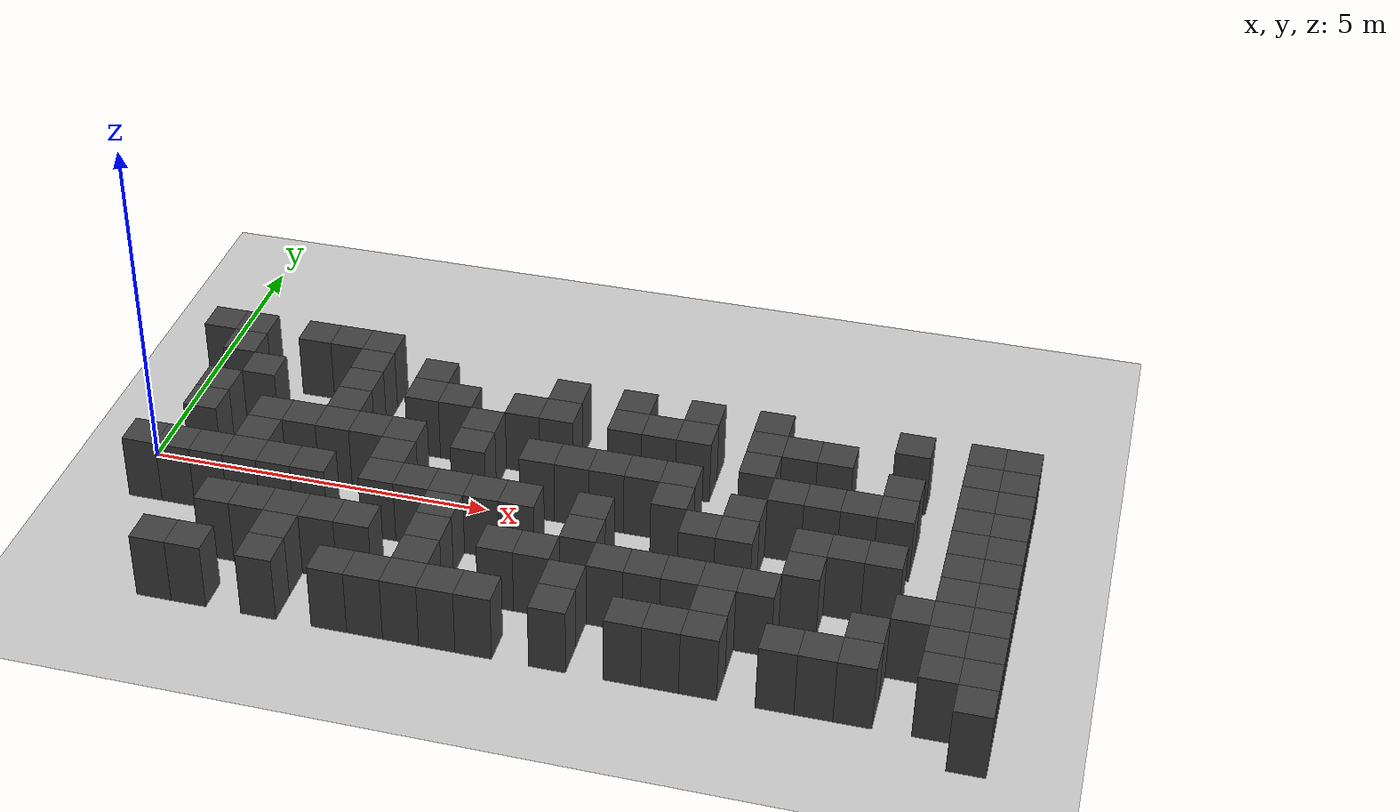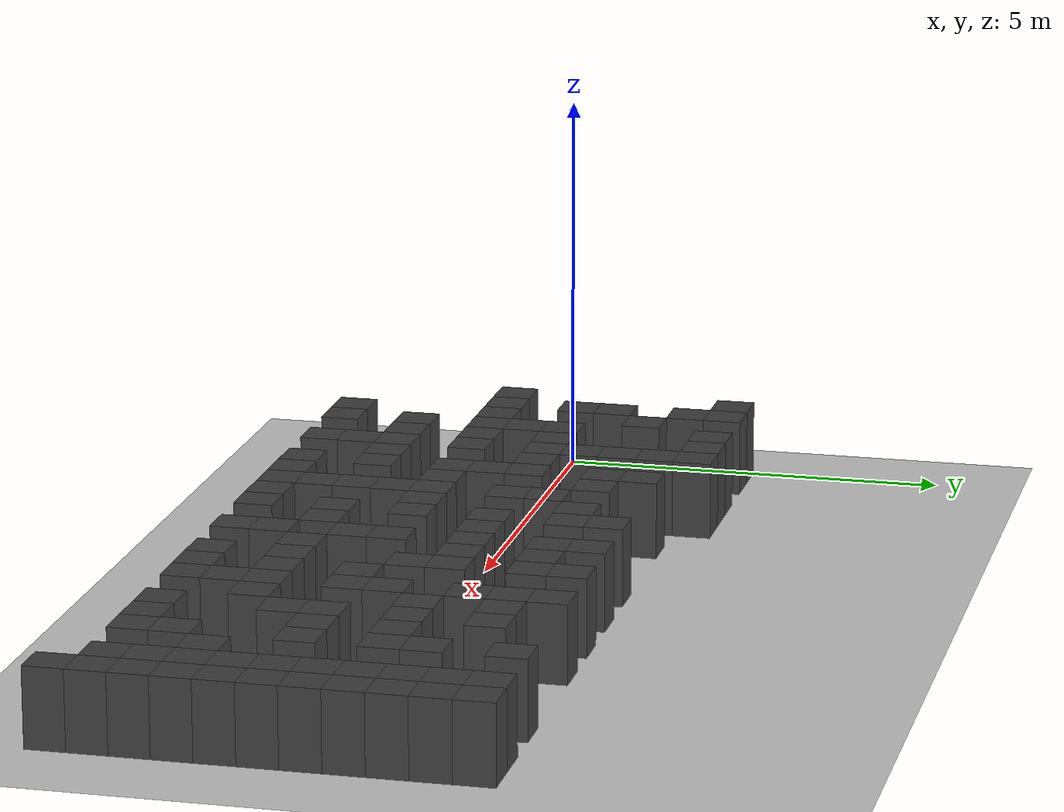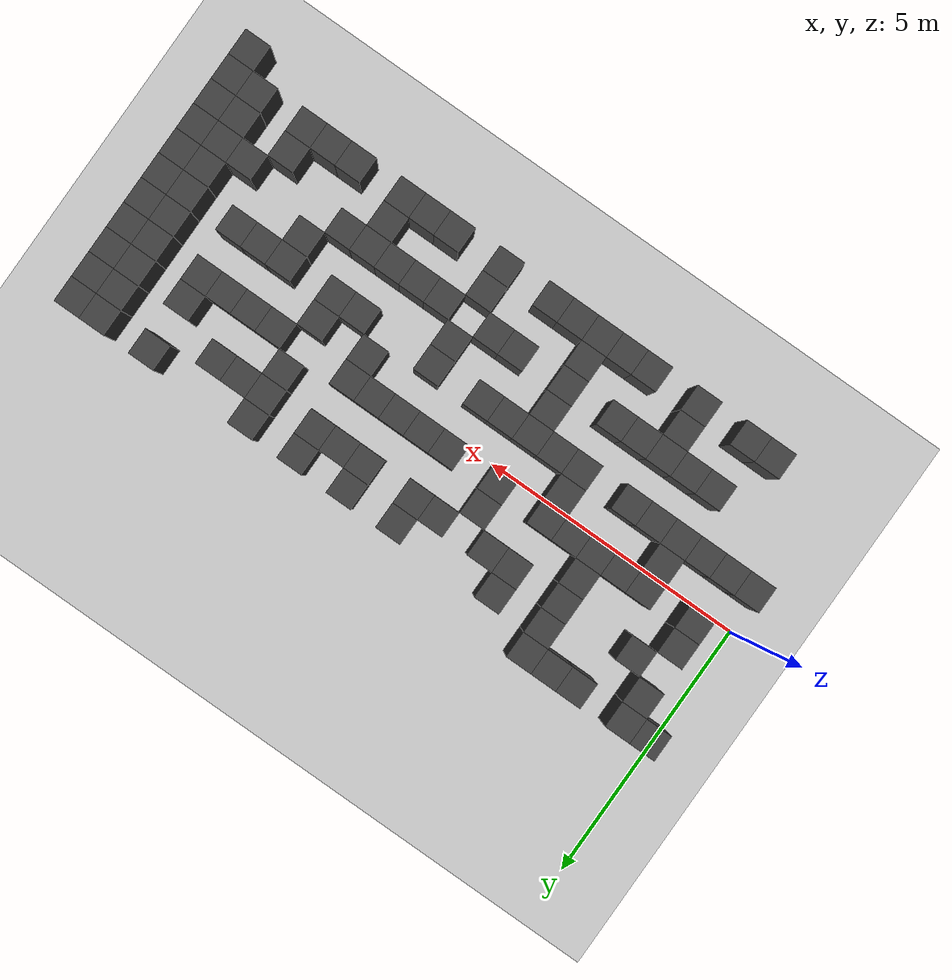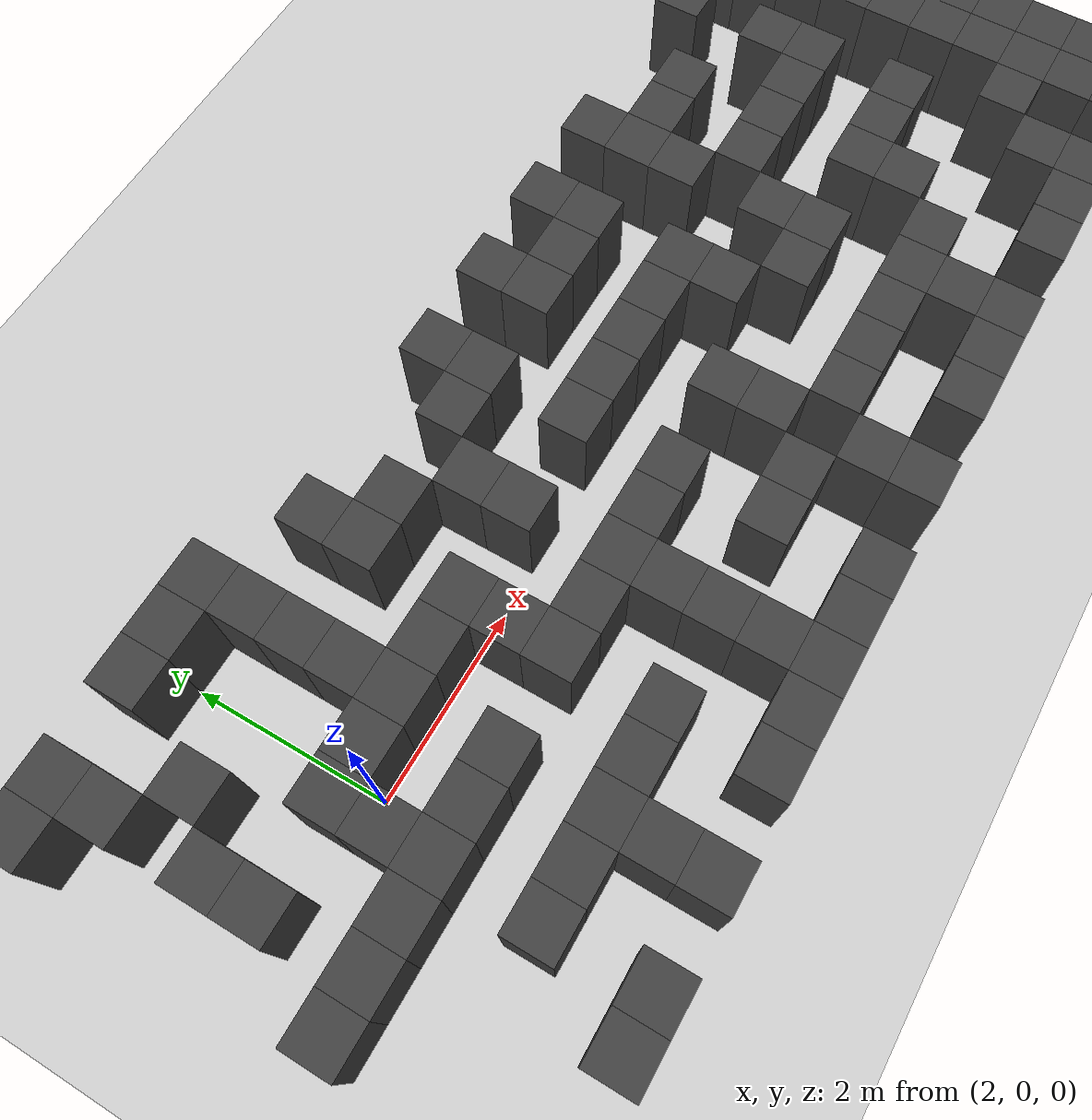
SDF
<sdf version="1.7">
 <world name="map_16783">
  <model name="ground_plane">
   <static>true</static>
   <link name="link">
    <collision name="collision">
     <geometry><plane><normal>0 0 1</normal><size>200 200</size></plane></geometry>
    </collision>
    <visual name="visual">
     <geometry><plane><normal>0 0 1</normal><size>200 200</size></plane></geometry>
     <material><ambient>0.8 0.8 0.8 1</ambient><diffuse>0.8 0.8 0.8 1</diffuse></material>
    </visual>
   </link>
  </model>
  <model name="maze_environment">
   <static>true</static>
   <link name="wall_508">
    <pose>0.250 2.250 0.500 0 0 0</pose>
    <collision name="col"><geometry><box><size>0.5 0.5 1.0</size></box></geometry></collision>
    <visual name="vis">
     <geometry><box><size>0.5 0.5 1.0</size></box></geometry>
     <material><ambient>0.15 0.15 0.15 1</ambient><diffuse>0.25 0.25 0.25 1</diffuse></material>
    </visual>
   </link>
   <link name="wall_509">
    <pose>0.750 2.250 0.500 0 0 0</pose>
    <collision name="col"><geometry><box><size>0.5 0.5 1.0</size></box></geometry></collision>
    <visual name="vis">
     <geometry><box><size>0.5 0.5 1.0</size></box></geometry>
     <material><ambient>0.15 0.15 0.15 1</ambient><diffuse>0.25 0.25 0.25 1</diffuse></material>
    </visual>
   </link>
   <link name="wall_510">
    <pose>1.750 2.250 0.500 0 0 0</pose>
    <collision name="col"><geometry><box><size>0.5 0.5 1.0</size></box></geometry></collision>
    <visual name="vis">
     <geometry><box><size>0.5 0.5 1.0</size></box></geometry>
     <material><ambient>0.15 0.15 0.15 1</ambient><diffuse>0.25 0.25 0.25 1</diffuse></material>
    </visual>
   </link>
   <link name="wall_511">
    <pose>2.250 2.250 0.500 0 0 0</pose>
    <collision name="col"><geometry><box><size>0.5 0.5 1.0</size></box></geometry></collision>
    <visual name="vis">
     <geometry><box><size>0.5 0.5 1.0</size></box></geometry>
     <material><ambient>0.15 0.15 0.15 1</ambient><diffuse>0.25 0.25 0.25 1</diffuse></material>
    </visual>
   </link>
   <link name="wall_512">
    <pose>2.750 2.250 0.500 0 0 0</pose>
    <collision name="col"><geometry><box><size>0.5 0.5 1.0</size></box></geometry></collision>
    <visual name="vis">
     <geometry><box><size>0.5 0.5 1.0</size></box></geometry>
     <material><ambient>0.15 0.15 0.15 1</ambient><diffuse>0.25 0.25 0.25 1</diffuse></material>
    </visual>
   </link>
   <link name="wall_526">
    <pose>0.750 1.750 0.500 0 0 0</pose>
    <collision name="col"><geometry><box><size>0.5 0.5 1.0</size></box></geometry></collision>
    <visual name="vis">
     <geometry><box><size>0.5 0.5 1.0</size></box></geometry>
     <material><ambient>0.15 0.15 0.15 1</ambient><diffuse>0.25 0.25 0.25 1</diffuse></material>
    </visual>
   </link>
   <link name="wall_527">
    <pose>2.750 1.750 0.500 0 0 0</pose>
    <collision name="col"><geometry><box><size>0.5 0.5 1.0</size></box></geometry></collision>
    <visual name="vis">
     <geometry><box><size>0.5 0.5 1.0</size></box></geometry>
     <material><ambient>0.15 0.15 0.15 1</ambient><diffuse>0.25 0.25 0.25 1</diffuse></material>
    </visual>
   </link>
   <link name="wall_528">
    <pose>3.750 1.750 0.500 0 0 0</pose>
    <collision name="col"><geometry><box><size>0.5 0.5 1.0</size></box></geometry></collision>
    <visual name="vis">
     <geometry><box><size>0.5 0.5 1.0</size></box></geometry>
     <material><ambient>0.15 0.15 0.15 1</ambient><diffuse>0.25 0.25 0.25 1</diffuse></material>
    </visual>
   </link>
   <link name="wall_529">
    <pose>5.750 1.750 0.500 0 0 0</pose>
    <collision name="col"><geometry><box><size>0.5 0.5 1.0</size></box></geometry></collision>
    <visual name="vis">
     <geometry><box><size>0.5 0.5 1.0</size></box></geometry>
     <material><ambient>0.15 0.15 0.15 1</ambient><diffuse>0.25 0.25 0.25 1</diffuse></material>
    </visual>
   </link>
   <link name="wall_530">
    <pose>6.750 1.750 0.500 0 0 0</pose>
    <collision name="col"><geometry><box><size>0.5 0.5 1.0</size></box></geometry></collision>
    <visual name="vis">
     <geometry><box><size>0.5 0.5 1.0</size></box></geometry>
     <material><ambient>0.15 0.15 0.15 1</ambient><diffuse>0.25 0.25 0.25 1</diffuse></material>
    </visual>
   </link>
   <link name="wall_531">
    <pose>7.750 1.750 0.500 0 0 0</pose>
    <collision name="col"><geometry><box><size>0.5 0.5 1.0</size></box></geometry></collision>
    <visual name="vis">
     <geometry><box><size>0.5 0.5 1.0</size></box></geometry>
     <material><ambient>0.15 0.15 0.15 1</ambient><diffuse>0.25 0.25 0.25 1</diffuse></material>
    </visual>
   </link>
   <link name="wall_532">
    <pose>8.750 1.750 0.500 0 0 0</pose>
    <collision name="col"><geometry><box><size>0.5 0.5 1.0</size></box></geometry></collision>
    <visual name="vis">
     <geometry><box><size>0.5 0.5 1.0</size></box></geometry>
     <material><ambient>0.15 0.15 0.15 1</ambient><diffuse>0.25 0.25 0.25 1</diffuse></material>
    </visual>
   </link>
   <link name="wall_533">
    <pose>10.750 1.750 0.500 0 0 0</pose>
    <collision name="col"><geometry><box><size>0.5 0.5 1.0</size></box></geometry></collision>
    <visual name="vis">
     <geometry><box><size>0.5 0.5 1.0</size></box></geometry>
     <material><ambient>0.15 0.15 0.15 1</ambient><diffuse>0.25 0.25 0.25 1</diffuse></material>
    </visual>
   </link>
   <link name="wall_534">
    <pose>11.750 1.750 0.500 0 0 0</pose>
    <collision name="col"><geometry><box><size>0.5 0.5 1.0</size></box></geometry></collision>
    <visual name="vis">
     <geometry><box><size>0.5 0.5 1.0</size></box></geometry>
     <material><ambient>0.15 0.15 0.15 1</ambient><diffuse>0.25 0.25 0.25 1</diffuse></material>
    </visual>
   </link>
   <link name="wall_535">
    <pose>12.250 1.750 0.500 0 0 0</pose>
    <collision name="col"><geometry><box><size>0.5 0.5 1.0</size></box></geometry></collision>
    <visual name="vis">
     <geometry><box><size>0.5 0.5 1.0</size></box></geometry>
     <material><ambient>0.15 0.15 0.15 1</ambient><diffuse>0.25 0.25 0.25 1</diffuse></material>
    </visual>
   </link>
   <link name="wall_554">
    <pose>1.250 1.250 0.500 0 0 0</pose>
    <collision name="col"><geometry><box><size>0.5 0.5 1.0</size></box></geometry></collision>
    <visual name="vis">
     <geometry><box><size>0.5 0.5 1.0</size></box></geometry>
     <material><ambient>0.15 0.15 0.15 1</ambient><diffuse>0.25 0.25 0.25 1</diffuse></material>
    </visual>
   </link>
   <link name="wall_555">
    <pose>2.750 1.250 0.500 0 0 0</pose>
    <collision name="col"><geometry><box><size>0.5 0.5 1.0</size></box></geometry></collision>
    <visual name="vis">
     <geometry><box><size>0.5 0.5 1.0</size></box></geometry>
     <material><ambient>0.15 0.15 0.15 1</ambient><diffuse>0.25 0.25 0.25 1</diffuse></material>
    </visual>
   </link>
   <link name="wall_556">
    <pose>3.750 1.250 0.500 0 0 0</pose>
    <collision name="col"><geometry><box><size>0.5 0.5 1.0</size></box></geometry></collision>
    <visual name="vis">
     <geometry><box><size>0.5 0.5 1.0</size></box></geometry>
     <material><ambient>0.15 0.15 0.15 1</ambient><diffuse>0.25 0.25 0.25 1</diffuse></material>
    </visual>
   </link>
   <link name="wall_557">
    <pose>4.250 1.250 0.500 0 0 0</pose>
    <collision name="col"><geometry><box><size>0.5 0.5 1.0</size></box></geometry></collision>
    <visual name="vis">
     <geometry><box><size>0.5 0.5 1.0</size></box></geometry>
     <material><ambient>0.15 0.15 0.15 1</ambient><diffuse>0.25 0.25 0.25 1</diffuse></material>
    </visual>
   </link>
   <link name="wall_558">
    <pose>5.250 1.250 0.500 0 0 0</pose>
    <collision name="col"><geometry><box><size>0.5 0.5 1.0</size></box></geometry></collision>
    <visual name="vis">
     <geometry><box><size>0.5 0.5 1.0</size></box></geometry>
     <material><ambient>0.15 0.15 0.15 1</ambient><diffuse>0.25 0.25 0.25 1</diffuse></material>
    </visual>
   </link>
   <link name="wall_559">
    <pose>5.750 1.250 0.500 0 0 0</pose>
    <collision name="col"><geometry><box><size>0.5 0.5 1.0</size></box></geometry></collision>
    <visual name="vis">
     <geometry><box><size>0.5 0.5 1.0</size></box></geometry>
     <material><ambient>0.15 0.15 0.15 1</ambient><diffuse>0.25 0.25 0.25 1</diffuse></material>
    </visual>
   </link>
   <link name="wall_560">
    <pose>6.750 1.250 0.500 0 0 0</pose>
    <collision name="col"><geometry><box><size>0.5 0.5 1.0</size></box></geometry></collision>
    <visual name="vis">
     <geometry><box><size>0.5 0.5 1.0</size></box></geometry>
     <material><ambient>0.15 0.15 0.15 1</ambient><diffuse>0.25 0.25 0.25 1</diffuse></material>
    </visual>
   </link>
   <link name="wall_561">
    <pose>7.250 1.250 0.500 0 0 0</pose>
    <collision name="col"><geometry><box><size>0.5 0.5 1.0</size></box></geometry></collision>
    <visual name="vis">
     <geometry><box><size>0.5 0.5 1.0</size></box></geometry>
     <material><ambient>0.15 0.15 0.15 1</ambient><diffuse>0.25 0.25 0.25 1</diffuse></material>
    </visual>
   </link>
   <link name="wall_562">
    <pose>7.750 1.250 0.500 0 0 0</pose>
    <collision name="col"><geometry><box><size>0.5 0.5 1.0</size></box></geometry></collision>
    <visual name="vis">
     <geometry><box><size>0.5 0.5 1.0</size></box></geometry>
     <material><ambient>0.15 0.15 0.15 1</ambient><diffuse>0.25 0.25 0.25 1</diffuse></material>
    </visual>
   </link>
   <link name="wall_563">
    <pose>8.750 1.250 0.500 0 0 0</pose>
    <collision name="col"><geometry><box><size>0.5 0.5 1.0</size></box></geometry></collision>
    <visual name="vis">
     <geometry><box><size>0.5 0.5 1.0</size></box></geometry>
     <material><ambient>0.15 0.15 0.15 1</ambient><diffuse>0.25 0.25 0.25 1</diffuse></material>
    </visual>
   </link>
   <link name="wall_564">
    <pose>9.250 1.250 0.500 0 0 0</pose>
    <collision name="col"><geometry><box><size>0.5 0.5 1.0</size></box></geometry></collision>
    <visual name="vis">
     <geometry><box><size>0.5 0.5 1.0</size></box></geometry>
     <material><ambient>0.15 0.15 0.15 1</ambient><diffuse>0.25 0.25 0.25 1</diffuse></material>
    </visual>
   </link>
   <link name="wall_565">
    <pose>9.750 1.250 0.500 0 0 0</pose>
    <collision name="col"><geometry><box><size>0.5 0.5 1.0</size></box></geometry></collision>
    <visual name="vis">
     <geometry><box><size>0.5 0.5 1.0</size></box></geometry>
     <material><ambient>0.15 0.15 0.15 1</ambient><diffuse>0.25 0.25 0.25 1</diffuse></material>
    </visual>
   </link>
   <link name="wall_566">
    <pose>11.750 1.250 0.500 0 0 0</pose>
    <collision name="col"><geometry><box><size>0.5 0.5 1.0</size></box></geometry></collision>
    <visual name="vis">
     <geometry><box><size>0.5 0.5 1.0</size></box></geometry>
     <material><ambient>0.15 0.15 0.15 1</ambient><diffuse>0.25 0.25 0.25 1</diffuse></material>
    </visual>
   </link>
   <link name="wall_567">
    <pose>12.250 1.250 0.500 0 0 0</pose>
    <collision name="col"><geometry><box><size>0.5 0.5 1.0</size></box></geometry></collision>
    <visual name="vis">
     <geometry><box><size>0.5 0.5 1.0</size></box></geometry>
     <material><ambient>0.15 0.15 0.15 1</ambient><diffuse>0.25 0.25 0.25 1</diffuse></material>
    </visual>
   </link>
   <link name="wall_577">
    <pose>0.750 0.750 0.500 0 0 0</pose>
    <collision name="col"><geometry><box><size>0.5 0.5 1.0</size></box></geometry></collision>
    <visual name="vis">
     <geometry><box><size>0.5 0.5 1.0</size></box></geometry>
     <material><ambient>0.15 0.15 0.15 1</ambient><diffuse>0.25 0.25 0.25 1</diffuse></material>
    </visual>
   </link>
   <link name="wall_578">
    <pose>2.750 0.750 0.500 0 0 0</pose>
    <collision name="col"><geometry><box><size>0.5 0.5 1.0</size></box></geometry></collision>
    <visual name="vis">
     <geometry><box><size>0.5 0.5 1.0</size></box></geometry>
     <material><ambient>0.15 0.15 0.15 1</ambient><diffuse>0.25 0.25 0.25 1</diffuse></material>
    </visual>
   </link>
   <link name="wall_579">
    <pose>4.750 0.750 0.500 0 0 0</pose>
    <collision name="col"><geometry><box><size>0.5 0.5 1.0</size></box></geometry></collision>
    <visual name="vis">
     <geometry><box><size>0.5 0.5 1.0</size></box></geometry>
     <material><ambient>0.15 0.15 0.15 1</ambient><diffuse>0.25 0.25 0.25 1</diffuse></material>
    </visual>
   </link>
   <link name="wall_580">
    <pose>8.750 0.750 0.500 0 0 0</pose>
    <collision name="col"><geometry><box><size>0.5 0.5 1.0</size></box></geometry></collision>
    <visual name="vis">
     <geometry><box><size>0.5 0.5 1.0</size></box></geometry>
     <material><ambient>0.15 0.15 0.15 1</ambient><diffuse>0.25 0.25 0.25 1</diffuse></material>
    </visual>
   </link>
   <link name="wall_581">
    <pose>10.750 0.750 0.500 0 0 0</pose>
    <collision name="col"><geometry><box><size>0.5 0.5 1.0</size></box></geometry></collision>
    <visual name="vis">
     <geometry><box><size>0.5 0.5 1.0</size></box></geometry>
     <material><ambient>0.15 0.15 0.15 1</ambient><diffuse>0.25 0.25 0.25 1</diffuse></material>
    </visual>
   </link>
   <link name="wall_582">
    <pose>11.750 0.750 0.500 0 0 0</pose>
    <collision name="col"><geometry><box><size>0.5 0.5 1.0</size></box></geometry></collision>
    <visual name="vis">
     <geometry><box><size>0.5 0.5 1.0</size></box></geometry>
     <material><ambient>0.15 0.15 0.15 1</ambient><diffuse>0.25 0.25 0.25 1</diffuse></material>
    </visual>
   </link>
   <link name="wall_583">
    <pose>12.250 0.750 0.500 0 0 0</pose>
    <collision name="col"><geometry><box><size>0.5 0.5 1.0</size></box></geometry></collision>
    <visual name="vis">
     <geometry><box><size>0.5 0.5 1.0</size></box></geometry>
     <material><ambient>0.15 0.15 0.15 1</ambient><diffuse>0.25 0.25 0.25 1</diffuse></material>
    </visual>
   </link>
   <link name="wall_600">
    <pose>0.750 0.250 0.500 0 0 0</pose>
    <collision name="col"><geometry><box><size>0.5 0.5 1.0</size></box></geometry></collision>
    <visual name="vis">
     <geometry><box><size>0.5 0.5 1.0</size></box></geometry>
     <material><ambient>0.15 0.15 0.15 1</ambient><diffuse>0.25 0.25 0.25 1</diffuse></material>
    </visual>
   </link>
   <link name="wall_601">
    <pose>1.750 0.250 0.500 0 0 0</pose>
    <collision name="col"><geometry><box><size>0.5 0.5 1.0</size></box></geometry></collision>
    <visual name="vis">
     <geometry><box><size>0.5 0.5 1.0</size></box></geometry>
     <material><ambient>0.15 0.15 0.15 1</ambient><diffuse>0.25 0.25 0.25 1</diffuse></material>
    </visual>
   </link>
   <link name="wall_602">
    <pose>2.250 0.250 0.500 0 0 0</pose>
    <collision name="col"><geometry><box><size>0.5 0.5 1.0</size></box></geometry></collision>
    <visual name="vis">
     <geometry><box><size>0.5 0.5 1.0</size></box></geometry>
     <material><ambient>0.15 0.15 0.15 1</ambient><diffuse>0.25 0.25 0.25 1</diffuse></material>
    </visual>
   </link>
   <link name="wall_603">
    <pose>2.750 0.250 0.500 0 0 0</pose>
    <collision name="col"><geometry><box><size>0.5 0.5 1.0</size></box></geometry></collision>
    <visual name="vis">
     <geometry><box><size>0.5 0.5 1.0</size></box></geometry>
     <material><ambient>0.15 0.15 0.15 1</ambient><diffuse>0.25 0.25 0.25 1</diffuse></material>
    </visual>
   </link>
   <link name="wall_604">
    <pose>3.250 0.250 0.500 0 0 0</pose>
    <collision name="col"><geometry><box><size>0.5 0.5 1.0</size></box></geometry></collision>
    <visual name="vis">
     <geometry><box><size>0.5 0.5 1.0</size></box></geometry>
     <material><ambient>0.15 0.15 0.15 1</ambient><diffuse>0.25 0.25 0.25 1</diffuse></material>
    </visual>
   </link>
   <link name="wall_605">
    <pose>3.750 0.250 0.500 0 0 0</pose>
    <collision name="col"><geometry><box><size>0.5 0.5 1.0</size></box></geometry></collision>
    <visual name="vis">
     <geometry><box><size>0.5 0.5 1.0</size></box></geometry>
     <material><ambient>0.15 0.15 0.15 1</ambient><diffuse>0.25 0.25 0.25 1</diffuse></material>
    </visual>
   </link>
   <link name="wall_606">
    <pose>4.750 0.250 0.500 0 0 0</pose>
    <collision name="col"><geometry><box><size>0.5 0.5 1.0</size></box></geometry></collision>
    <visual name="vis">
     <geometry><box><size>0.5 0.5 1.0</size></box></geometry>
     <material><ambient>0.15 0.15 0.15 1</ambient><diffuse>0.25 0.25 0.25 1</diffuse></material>
    </visual>
   </link>
   <link name="wall_607">
    <pose>5.750 0.250 0.500 0 0 0</pose>
    <collision name="col"><geometry><box><size>0.5 0.5 1.0</size></box></geometry></collision>
    <visual name="vis">
     <geometry><box><size>0.5 0.5 1.0</size></box></geometry>
     <material><ambient>0.15 0.15 0.15 1</ambient><diffuse>0.25 0.25 0.25 1</diffuse></material>
    </visual>
   </link>
   <link name="wall_608">
    <pose>6.250 0.250 0.500 0 0 0</pose>
    <collision name="col"><geometry><box><size>0.5 0.5 1.0</size></box></geometry></collision>
    <visual name="vis">
     <geometry><box><size>0.5 0.5 1.0</size></box></geometry>
     <material><ambient>0.15 0.15 0.15 1</ambient><diffuse>0.25 0.25 0.25 1</diffuse></material>
    </visual>
   </link>
   <link name="wall_609">
    <pose>6.750 0.250 0.500 0 0 0</pose>
    <collision name="col"><geometry><box><size>0.5 0.5 1.0</size></box></geometry></collision>
    <visual name="vis">
     <geometry><box><size>0.5 0.5 1.0</size></box></geometry>
     <material><ambient>0.15 0.15 0.15 1</ambient><diffuse>0.25 0.25 0.25 1</diffuse></material>
    </visual>
   </link>
   <link name="wall_610">
    <pose>7.250 0.250 0.500 0 0 0</pose>
    <collision name="col"><geometry><box><size>0.5 0.5 1.0</size></box></geometry></collision>
    <visual name="vis">
     <geometry><box><size>0.5 0.5 1.0</size></box></geometry>
     <material><ambient>0.15 0.15 0.15 1</ambient><diffuse>0.25 0.25 0.25 1</diffuse></material>
    </visual>
   </link>
   <link name="wall_611">
    <pose>7.750 0.250 0.500 0 0 0</pose>
    <collision name="col"><geometry><box><size>0.5 0.5 1.0</size></box></geometry></collision>
    <visual name="vis">
     <geometry><box><size>0.5 0.5 1.0</size></box></geometry>
     <material><ambient>0.15 0.15 0.15 1</ambient><diffuse>0.25 0.25 0.25 1</diffuse></material>
    </visual>
   </link>
   <link name="wall_612">
    <pose>9.250 0.250 0.500 0 0 0</pose>
    <collision name="col"><geometry><box><size>0.5 0.5 1.0</size></box></geometry></collision>
    <visual name="vis">
     <geometry><box><size>0.5 0.5 1.0</size></box></geometry>
     <material><ambient>0.15 0.15 0.15 1</ambient><diffuse>0.25 0.25 0.25 1</diffuse></material>
    </visual>
   </link>
   <link name="wall_613">
    <pose>9.750 0.250 0.500 0 0 0</pose>
    <collision name="col"><geometry><box><size>0.5 0.5 1.0</size></box></geometry></collision>
    <visual name="vis">
     <geometry><box><size>0.5 0.5 1.0</size></box></geometry>
     <material><ambient>0.15 0.15 0.15 1</ambient><diffuse>0.25 0.25 0.25 1</diffuse></material>
    </visual>
   </link>
   <link name="wall_614">
    <pose>10.250 0.250 0.500 0 0 0</pose>
    <collision name="col"><geometry><box><size>0.5 0.5 1.0</size></box></geometry></collision>
    <visual name="vis">
     <geometry><box><size>0.5 0.5 1.0</size></box></geometry>
     <material><ambient>0.15 0.15 0.15 1</ambient><diffuse>0.25 0.25 0.25 1</diffuse></material>
    </visual>
   </link>
   <link name="wall_615">
    <pose>10.750 0.250 0.500 0 0 0</pose>
    <collision name="col"><geometry><box><size>0.5 0.5 1.0</size></box></geometry></collision>
    <visual name="vis">
     <geometry><box><size>0.5 0.5 1.0</size></box></geometry>
     <material><ambient>0.15 0.15 0.15 1</ambient><diffuse>0.25 0.25 0.25 1</diffuse></material>
    </visual>
   </link>
   <link name="wall_616">
    <pose>11.750 0.250 0.500 0 0 0</pose>
    <collision name="col"><geometry><box><size>0.5 0.5 1.0</size></box></geometry></collision>
    <visual name="vis">
     <geometry><box><size>0.5 0.5 1.0</size></box></geometry>
     <material><ambient>0.15 0.15 0.15 1</ambient><diffuse>0.25 0.25 0.25 1</diffuse></material>
    </visual>
   </link>
   <link name="wall_617">
    <pose>12.250 0.250 0.500 0 0 0</pose>
    <collision name="col"><geometry><box><size>0.5 0.5 1.0</size></box></geometry></collision>
    <visual name="vis">
     <geometry><box><size>0.5 0.5 1.0</size></box></geometry>
     <material><ambient>0.15 0.15 0.15 1</ambient><diffuse>0.25 0.25 0.25 1</diffuse></material>
    </visual>
   </link>
   <link name="wall_625">
    <pose>1.750 -0.250 0.500 0 0 0</pose>
    <collision name="col"><geometry><box><size>0.5 0.5 1.0</size></box></geometry></collision>
    <visual name="vis">
     <geometry><box><size>0.5 0.5 1.0</size></box></geometry>
     <material><ambient>0.15 0.15 0.15 1</ambient><diffuse>0.25 0.25 0.25 1</diffuse></material>
    </visual>
   </link>
   <link name="wall_626">
    <pose>3.750 -0.250 0.500 0 0 0</pose>
    <collision name="col"><geometry><box><size>0.5 0.5 1.0</size></box></geometry></collision>
    <visual name="vis">
     <geometry><box><size>0.5 0.5 1.0</size></box></geometry>
     <material><ambient>0.15 0.15 0.15 1</ambient><diffuse>0.25 0.25 0.25 1</diffuse></material>
    </visual>
   </link>
   <link name="wall_627">
    <pose>7.750 -0.250 0.500 0 0 0</pose>
    <collision name="col"><geometry><box><size>0.5 0.5 1.0</size></box></geometry></collision>
    <visual name="vis">
     <geometry><box><size>0.5 0.5 1.0</size></box></geometry>
     <material><ambient>0.15 0.15 0.15 1</ambient><diffuse>0.25 0.25 0.25 1</diffuse></material>
    </visual>
   </link>
   <link name="wall_628">
    <pose>8.750 -0.250 0.500 0 0 0</pose>
    <collision name="col"><geometry><box><size>0.5 0.5 1.0</size></box></geometry></collision>
    <visual name="vis">
     <geometry><box><size>0.5 0.5 1.0</size></box></geometry>
     <material><ambient>0.15 0.15 0.15 1</ambient><diffuse>0.25 0.25 0.25 1</diffuse></material>
    </visual>
   </link>
   <link name="wall_629">
    <pose>11.750 -0.250 0.500 0 0 0</pose>
    <collision name="col"><geometry><box><size>0.5 0.5 1.0</size></box></geometry></collision>
    <visual name="vis">
     <geometry><box><size>0.5 0.5 1.0</size></box></geometry>
     <material><ambient>0.15 0.15 0.15 1</ambient><diffuse>0.25 0.25 0.25 1</diffuse></material>
    </visual>
   </link>
   <link name="wall_630">
    <pose>12.250 -0.250 0.500 0 0 0</pose>
    <collision name="col"><geometry><box><size>0.5 0.5 1.0</size></box></geometry></collision>
    <visual name="vis">
     <geometry><box><size>0.5 0.5 1.0</size></box></geometry>
     <material><ambient>0.15 0.15 0.15 1</ambient><diffuse>0.25 0.25 0.25 1</diffuse></material>
    </visual>
   </link>
   <link name="wall_647">
    <pose>0.250 -0.750 0.500 0 0 0</pose>
    <collision name="col"><geometry><box><size>0.5 0.5 1.0</size></box></geometry></collision>
    <visual name="vis">
     <geometry><box><size>0.5 0.5 1.0</size></box></geometry>
     <material><ambient>0.15 0.15 0.15 1</ambient><diffuse>0.25 0.25 0.25 1</diffuse></material>
    </visual>
   </link>
   <link name="wall_648">
    <pose>0.750 -0.750 0.500 0 0 0</pose>
    <collision name="col"><geometry><box><size>0.5 0.5 1.0</size></box></geometry></collision>
    <visual name="vis">
     <geometry><box><size>0.5 0.5 1.0</size></box></geometry>
     <material><ambient>0.15 0.15 0.15 1</ambient><diffuse>0.25 0.25 0.25 1</diffuse></material>
    </visual>
   </link>
   <link name="wall_649">
    <pose>1.250 -0.750 0.500 0 0 0</pose>
    <collision name="col"><geometry><box><size>0.5 0.5 1.0</size></box></geometry></collision>
    <visual name="vis">
     <geometry><box><size>0.5 0.5 1.0</size></box></geometry>
     <material><ambient>0.15 0.15 0.15 1</ambient><diffuse>0.25 0.25 0.25 1</diffuse></material>
    </visual>
   </link>
   <link name="wall_650">
    <pose>1.750 -0.750 0.500 0 0 0</pose>
    <collision name="col"><geometry><box><size>0.5 0.5 1.0</size></box></geometry></collision>
    <visual name="vis">
     <geometry><box><size>0.5 0.5 1.0</size></box></geometry>
     <material><ambient>0.15 0.15 0.15 1</ambient><diffuse>0.25 0.25 0.25 1</diffuse></material>
    </visual>
   </link>
   <link name="wall_651">
    <pose>2.250 -0.750 0.500 0 0 0</pose>
    <collision name="col"><geometry><box><size>0.5 0.5 1.0</size></box></geometry></collision>
    <visual name="vis">
     <geometry><box><size>0.5 0.5 1.0</size></box></geometry>
     <material><ambient>0.15 0.15 0.15 1</ambient><diffuse>0.25 0.25 0.25 1</diffuse></material>
    </visual>
   </link>
   <link name="wall_652">
    <pose>2.750 -0.750 0.500 0 0 0</pose>
    <collision name="col"><geometry><box><size>0.5 0.5 1.0</size></box></geometry></collision>
    <visual name="vis">
     <geometry><box><size>0.5 0.5 1.0</size></box></geometry>
     <material><ambient>0.15 0.15 0.15 1</ambient><diffuse>0.25 0.25 0.25 1</diffuse></material>
    </visual>
   </link>
   <link name="wall_653">
    <pose>3.750 -0.750 0.500 0 0 0</pose>
    <collision name="col"><geometry><box><size>0.5 0.5 1.0</size></box></geometry></collision>
    <visual name="vis">
     <geometry><box><size>0.5 0.5 1.0</size></box></geometry>
     <material><ambient>0.15 0.15 0.15 1</ambient><diffuse>0.25 0.25 0.25 1</diffuse></material>
    </visual>
   </link>
   <link name="wall_654">
    <pose>4.250 -0.750 0.500 0 0 0</pose>
    <collision name="col"><geometry><box><size>0.5 0.5 1.0</size></box></geometry></collision>
    <visual name="vis">
     <geometry><box><size>0.5 0.5 1.0</size></box></geometry>
     <material><ambient>0.15 0.15 0.15 1</ambient><diffuse>0.25 0.25 0.25 1</diffuse></material>
    </visual>
   </link>
   <link name="wall_655">
    <pose>4.750 -0.750 0.500 0 0 0</pose>
    <collision name="col"><geometry><box><size>0.5 0.5 1.0</size></box></geometry></collision>
    <visual name="vis">
     <geometry><box><size>0.5 0.5 1.0</size></box></geometry>
     <material><ambient>0.15 0.15 0.15 1</ambient><diffuse>0.25 0.25 0.25 1</diffuse></material>
    </visual>
   </link>
   <link name="wall_656">
    <pose>5.250 -0.750 0.500 0 0 0</pose>
    <collision name="col"><geometry><box><size>0.5 0.5 1.0</size></box></geometry></collision>
    <visual name="vis">
     <geometry><box><size>0.5 0.5 1.0</size></box></geometry>
     <material><ambient>0.15 0.15 0.15 1</ambient><diffuse>0.25 0.25 0.25 1</diffuse></material>
    </visual>
   </link>
   <link name="wall_657">
    <pose>5.750 -0.750 0.500 0 0 0</pose>
    <collision name="col"><geometry><box><size>0.5 0.5 1.0</size></box></geometry></collision>
    <visual name="vis">
     <geometry><box><size>0.5 0.5 1.0</size></box></geometry>
     <material><ambient>0.15 0.15 0.15 1</ambient><diffuse>0.25 0.25 0.25 1</diffuse></material>
    </visual>
   </link>
   <link name="wall_658">
    <pose>6.750 -0.750 0.500 0 0 0</pose>
    <collision name="col"><geometry><box><size>0.5 0.5 1.0</size></box></geometry></collision>
    <visual name="vis">
     <geometry><box><size>0.5 0.5 1.0</size></box></geometry>
     <material><ambient>0.15 0.15 0.15 1</ambient><diffuse>0.25 0.25 0.25 1</diffuse></material>
    </visual>
   </link>
   <link name="wall_659">
    <pose>8.250 -0.750 0.500 0 0 0</pose>
    <collision name="col"><geometry><box><size>0.5 0.5 1.0</size></box></geometry></collision>
    <visual name="vis">
     <geometry><box><size>0.5 0.5 1.0</size></box></geometry>
     <material><ambient>0.15 0.15 0.15 1</ambient><diffuse>0.25 0.25 0.25 1</diffuse></material>
    </visual>
   </link>
   <link name="wall_660">
    <pose>8.750 -0.750 0.500 0 0 0</pose>
    <collision name="col"><geometry><box><size>0.5 0.5 1.0</size></box></geometry></collision>
    <visual name="vis">
     <geometry><box><size>0.5 0.5 1.0</size></box></geometry>
     <material><ambient>0.15 0.15 0.15 1</ambient><diffuse>0.25 0.25 0.25 1</diffuse></material>
    </visual>
   </link>
   <link name="wall_661">
    <pose>9.750 -0.750 0.500 0 0 0</pose>
    <collision name="col"><geometry><box><size>0.5 0.5 1.0</size></box></geometry></collision>
    <visual name="vis">
     <geometry><box><size>0.5 0.5 1.0</size></box></geometry>
     <material><ambient>0.15 0.15 0.15 1</ambient><diffuse>0.25 0.25 0.25 1</diffuse></material>
    </visual>
   </link>
   <link name="wall_662">
    <pose>10.250 -0.750 0.500 0 0 0</pose>
    <collision name="col"><geometry><box><size>0.5 0.5 1.0</size></box></geometry></collision>
    <visual name="vis">
     <geometry><box><size>0.5 0.5 1.0</size></box></geometry>
     <material><ambient>0.15 0.15 0.15 1</ambient><diffuse>0.25 0.25 0.25 1</diffuse></material>
    </visual>
   </link>
   <link name="wall_663">
    <pose>10.750 -0.750 0.500 0 0 0</pose>
    <collision name="col"><geometry><box><size>0.5 0.5 1.0</size></box></geometry></collision>
    <visual name="vis">
     <geometry><box><size>0.5 0.5 1.0</size></box></geometry>
     <material><ambient>0.15 0.15 0.15 1</ambient><diffuse>0.25 0.25 0.25 1</diffuse></material>
    </visual>
   </link>
   <link name="wall_664">
    <pose>11.750 -0.750 0.500 0 0 0</pose>
    <collision name="col"><geometry><box><size>0.5 0.5 1.0</size></box></geometry></collision>
    <visual name="vis">
     <geometry><box><size>0.5 0.5 1.0</size></box></geometry>
     <material><ambient>0.15 0.15 0.15 1</ambient><diffuse>0.25 0.25 0.25 1</diffuse></material>
    </visual>
   </link>
   <link name="wall_665">
    <pose>12.250 -0.750 0.500 0 0 0</pose>
    <collision name="col"><geometry><box><size>0.5 0.5 1.0</size></box></geometry></collision>
    <visual name="vis">
     <geometry><box><size>0.5 0.5 1.0</size></box></geometry>
     <material><ambient>0.15 0.15 0.15 1</ambient><diffuse>0.25 0.25 0.25 1</diffuse></material>
    </visual>
   </link>
   <link name="wall_671">
    <pose>4.750 -1.250 0.500 0 0 0</pose>
    <collision name="col"><geometry><box><size>0.5 0.5 1.0</size></box></geometry></collision>
    <visual name="vis">
     <geometry><box><size>0.5 0.5 1.0</size></box></geometry>
     <material><ambient>0.15 0.15 0.15 1</ambient><diffuse>0.25 0.25 0.25 1</diffuse></material>
    </visual>
   </link>
   <link name="wall_672">
    <pose>6.750 -1.250 0.500 0 0 0</pose>
    <collision name="col"><geometry><box><size>0.5 0.5 1.0</size></box></geometry></collision>
    <visual name="vis">
     <geometry><box><size>0.5 0.5 1.0</size></box></geometry>
     <material><ambient>0.15 0.15 0.15 1</ambient><diffuse>0.25 0.25 0.25 1</diffuse></material>
    </visual>
   </link>
   <link name="wall_673">
    <pose>9.750 -1.250 0.500 0 0 0</pose>
    <collision name="col"><geometry><box><size>0.5 0.5 1.0</size></box></geometry></collision>
    <visual name="vis">
     <geometry><box><size>0.5 0.5 1.0</size></box></geometry>
     <material><ambient>0.15 0.15 0.15 1</ambient><diffuse>0.25 0.25 0.25 1</diffuse></material>
    </visual>
   </link>
   <link name="wall_674">
    <pose>11.750 -1.250 0.500 0 0 0</pose>
    <collision name="col"><geometry><box><size>0.5 0.5 1.0</size></box></geometry></collision>
    <visual name="vis">
     <geometry><box><size>0.5 0.5 1.0</size></box></geometry>
     <material><ambient>0.15 0.15 0.15 1</ambient><diffuse>0.25 0.25 0.25 1</diffuse></material>
    </visual>
   </link>
   <link name="wall_675">
    <pose>12.250 -1.250 0.500 0 0 0</pose>
    <collision name="col"><geometry><box><size>0.5 0.5 1.0</size></box></geometry></collision>
    <visual name="vis">
     <geometry><box><size>0.5 0.5 1.0</size></box></geometry>
     <material><ambient>0.15 0.15 0.15 1</ambient><diffuse>0.25 0.25 0.25 1</diffuse></material>
    </visual>
   </link>
   <link name="wall_694">
    <pose>1.750 -1.750 0.500 0 0 0</pose>
    <collision name="col"><geometry><box><size>0.5 0.5 1.0</size></box></geometry></collision>
    <visual name="vis">
     <geometry><box><size>0.5 0.5 1.0</size></box></geometry>
     <material><ambient>0.15 0.15 0.15 1</ambient><diffuse>0.25 0.25 0.25 1</diffuse></material>
    </visual>
   </link>
   <link name="wall_695">
    <pose>2.250 -1.750 0.500 0 0 0</pose>
    <collision name="col"><geometry><box><size>0.5 0.5 1.0</size></box></geometry></collision>
    <visual name="vis">
     <geometry><box><size>0.5 0.5 1.0</size></box></geometry>
     <material><ambient>0.15 0.15 0.15 1</ambient><diffuse>0.25 0.25 0.25 1</diffuse></material>
    </visual>
   </link>
   <link name="wall_696">
    <pose>2.750 -1.750 0.500 0 0 0</pose>
    <collision name="col"><geometry><box><size>0.5 0.5 1.0</size></box></geometry></collision>
    <visual name="vis">
     <geometry><box><size>0.5 0.5 1.0</size></box></geometry>
     <material><ambient>0.15 0.15 0.15 1</ambient><diffuse>0.25 0.25 0.25 1</diffuse></material>
    </visual>
   </link>
   <link name="wall_697">
    <pose>3.250 -1.750 0.500 0 0 0</pose>
    <collision name="col"><geometry><box><size>0.5 0.5 1.0</size></box></geometry></collision>
    <visual name="vis">
     <geometry><box><size>0.5 0.5 1.0</size></box></geometry>
     <material><ambient>0.15 0.15 0.15 1</ambient><diffuse>0.25 0.25 0.25 1</diffuse></material>
    </visual>
   </link>
   <link name="wall_698">
    <pose>3.750 -1.750 0.500 0 0 0</pose>
    <collision name="col"><geometry><box><size>0.5 0.5 1.0</size></box></geometry></collision>
    <visual name="vis">
     <geometry><box><size>0.5 0.5 1.0</size></box></geometry>
     <material><ambient>0.15 0.15 0.15 1</ambient><diffuse>0.25 0.25 0.25 1</diffuse></material>
    </visual>
   </link>
   <link name="wall_699">
    <pose>4.750 -1.750 0.500 0 0 0</pose>
    <collision name="col"><geometry><box><size>0.5 0.5 1.0</size></box></geometry></collision>
    <visual name="vis">
     <geometry><box><size>0.5 0.5 1.0</size></box></geometry>
     <material><ambient>0.15 0.15 0.15 1</ambient><diffuse>0.25 0.25 0.25 1</diffuse></material>
    </visual>
   </link>
   <link name="wall_700">
    <pose>5.750 -1.750 0.500 0 0 0</pose>
    <collision name="col"><geometry><box><size>0.5 0.5 1.0</size></box></geometry></collision>
    <visual name="vis">
     <geometry><box><size>0.5 0.5 1.0</size></box></geometry>
     <material><ambient>0.15 0.15 0.15 1</ambient><diffuse>0.25 0.25 0.25 1</diffuse></material>
    </visual>
   </link>
   <link name="wall_701">
    <pose>6.250 -1.750 0.500 0 0 0</pose>
    <collision name="col"><geometry><box><size>0.5 0.5 1.0</size></box></geometry></collision>
    <visual name="vis">
     <geometry><box><size>0.5 0.5 1.0</size></box></geometry>
     <material><ambient>0.15 0.15 0.15 1</ambient><diffuse>0.25 0.25 0.25 1</diffuse></material>
    </visual>
   </link>
   <link name="wall_702">
    <pose>7.250 -1.750 0.500 0 0 0</pose>
    <collision name="col"><geometry><box><size>0.5 0.5 1.0</size></box></geometry></collision>
    <visual name="vis">
     <geometry><box><size>0.5 0.5 1.0</size></box></geometry>
     <material><ambient>0.15 0.15 0.15 1</ambient><diffuse>0.25 0.25 0.25 1</diffuse></material>
    </visual>
   </link>
   <link name="wall_703">
    <pose>7.750 -1.750 0.500 0 0 0</pose>
    <collision name="col"><geometry><box><size>0.5 0.5 1.0</size></box></geometry></collision>
    <visual name="vis">
     <geometry><box><size>0.5 0.5 1.0</size></box></geometry>
     <material><ambient>0.15 0.15 0.15 1</ambient><diffuse>0.25 0.25 0.25 1</diffuse></material>
    </visual>
   </link>
   <link name="wall_704">
    <pose>8.250 -1.750 0.500 0 0 0</pose>
    <collision name="col"><geometry><box><size>0.5 0.5 1.0</size></box></geometry></collision>
    <visual name="vis">
     <geometry><box><size>0.5 0.5 1.0</size></box></geometry>
     <material><ambient>0.15 0.15 0.15 1</ambient><diffuse>0.25 0.25 0.25 1</diffuse></material>
    </visual>
   </link>
   <link name="wall_705">
    <pose>8.750 -1.750 0.500 0 0 0</pose>
    <collision name="col"><geometry><box><size>0.5 0.5 1.0</size></box></geometry></collision>
    <visual name="vis">
     <geometry><box><size>0.5 0.5 1.0</size></box></geometry>
     <material><ambient>0.15 0.15 0.15 1</ambient><diffuse>0.25 0.25 0.25 1</diffuse></material>
    </visual>
   </link>
   <link name="wall_706">
    <pose>9.250 -1.750 0.500 0 0 0</pose>
    <collision name="col"><geometry><box><size>0.5 0.5 1.0</size></box></geometry></collision>
    <visual name="vis">
     <geometry><box><size>0.5 0.5 1.0</size></box></geometry>
     <material><ambient>0.15 0.15 0.15 1</ambient><diffuse>0.25 0.25 0.25 1</diffuse></material>
    </visual>
   </link>
   <link name="wall_707">
    <pose>11.250 -1.750 0.500 0 0 0</pose>
    <collision name="col"><geometry><box><size>0.5 0.5 1.0</size></box></geometry></collision>
    <visual name="vis">
     <geometry><box><size>0.5 0.5 1.0</size></box></geometry>
     <material><ambient>0.15 0.15 0.15 1</ambient><diffuse>0.25 0.25 0.25 1</diffuse></material>
    </visual>
   </link>
   <link name="wall_708">
    <pose>11.750 -1.750 0.500 0 0 0</pose>
    <collision name="col"><geometry><box><size>0.5 0.5 1.0</size></box></geometry></collision>
    <visual name="vis">
     <geometry><box><size>0.5 0.5 1.0</size></box></geometry>
     <material><ambient>0.15 0.15 0.15 1</ambient><diffuse>0.25 0.25 0.25 1</diffuse></material>
    </visual>
   </link>
   <link name="wall_709">
    <pose>12.250 -1.750 0.500 0 0 0</pose>
    <collision name="col"><geometry><box><size>0.5 0.5 1.0</size></box></geometry></collision>
    <visual name="vis">
     <geometry><box><size>0.5 0.5 1.0</size></box></geometry>
     <material><ambient>0.15 0.15 0.15 1</ambient><diffuse>0.25 0.25 0.25 1</diffuse></material>
    </visual>
   </link>
   <link name="wall_718">
    <pose>2.750 -2.250 0.500 0 0 0</pose>
    <collision name="col"><geometry><box><size>0.5 0.5 1.0</size></box></geometry></collision>
    <visual name="vis">
     <geometry><box><size>0.5 0.5 1.0</size></box></geometry>
     <material><ambient>0.15 0.15 0.15 1</ambient><diffuse>0.25 0.25 0.25 1</diffuse></material>
    </visual>
   </link>
   <link name="wall_719">
    <pose>4.750 -2.250 0.500 0 0 0</pose>
    <collision name="col"><geometry><box><size>0.5 0.5 1.0</size></box></geometry></collision>
    <visual name="vis">
     <geometry><box><size>0.5 0.5 1.0</size></box></geometry>
     <material><ambient>0.15 0.15 0.15 1</ambient><diffuse>0.25 0.25 0.25 1</diffuse></material>
    </visual>
   </link>
   <link name="wall_720">
    <pose>6.750 -2.250 0.500 0 0 0</pose>
    <collision name="col"><geometry><box><size>0.5 0.5 1.0</size></box></geometry></collision>
    <visual name="vis">
     <geometry><box><size>0.5 0.5 1.0</size></box></geometry>
     <material><ambient>0.15 0.15 0.15 1</ambient><diffuse>0.25 0.25 0.25 1</diffuse></material>
    </visual>
   </link>
   <link name="wall_721">
    <pose>8.750 -2.250 0.500 0 0 0</pose>
    <collision name="col"><geometry><box><size>0.5 0.5 1.0</size></box></geometry></collision>
    <visual name="vis">
     <geometry><box><size>0.5 0.5 1.0</size></box></geometry>
     <material><ambient>0.15 0.15 0.15 1</ambient><diffuse>0.25 0.25 0.25 1</diffuse></material>
    </visual>
   </link>
   <link name="wall_722">
    <pose>10.750 -2.250 0.500 0 0 0</pose>
    <collision name="col"><geometry><box><size>0.5 0.5 1.0</size></box></geometry></collision>
    <visual name="vis">
     <geometry><box><size>0.5 0.5 1.0</size></box></geometry>
     <material><ambient>0.15 0.15 0.15 1</ambient><diffuse>0.25 0.25 0.25 1</diffuse></material>
    </visual>
   </link>
   <link name="wall_723">
    <pose>11.750 -2.250 0.500 0 0 0</pose>
    <collision name="col"><geometry><box><size>0.5 0.5 1.0</size></box></geometry></collision>
    <visual name="vis">
     <geometry><box><size>0.5 0.5 1.0</size></box></geometry>
     <material><ambient>0.15 0.15 0.15 1</ambient><diffuse>0.25 0.25 0.25 1</diffuse></material>
    </visual>
   </link>
   <link name="wall_724">
    <pose>12.250 -2.250 0.500 0 0 0</pose>
    <collision name="col"><geometry><box><size>0.5 0.5 1.0</size></box></geometry></collision>
    <visual name="vis">
     <geometry><box><size>0.5 0.5 1.0</size></box></geometry>
     <material><ambient>0.15 0.15 0.15 1</ambient><diffuse>0.25 0.25 0.25 1</diffuse></material>
    </visual>
   </link>
   <link name="wall_739">
    <pose>1.250 -2.750 0.500 0 0 0</pose>
    <collision name="col"><geometry><box><size>0.5 0.5 1.0</size></box></geometry></collision>
    <visual name="vis">
     <geometry><box><size>0.5 0.5 1.0</size></box></geometry>
     <material><ambient>0.15 0.15 0.15 1</ambient><diffuse>0.25 0.25 0.25 1</diffuse></material>
    </visual>
   </link>
   <link name="wall_740">
    <pose>1.750 -2.750 0.500 0 0 0</pose>
    <collision name="col"><geometry><box><size>0.5 0.5 1.0</size></box></geometry></collision>
    <visual name="vis">
     <geometry><box><size>0.5 0.5 1.0</size></box></geometry>
     <material><ambient>0.15 0.15 0.15 1</ambient><diffuse>0.25 0.25 0.25 1</diffuse></material>
    </visual>
   </link>
   <link name="wall_741">
    <pose>2.750 -2.750 0.500 0 0 0</pose>
    <collision name="col"><geometry><box><size>0.5 0.5 1.0</size></box></geometry></collision>
    <visual name="vis">
     <geometry><box><size>0.5 0.5 1.0</size></box></geometry>
     <material><ambient>0.15 0.15 0.15 1</ambient><diffuse>0.25 0.25 0.25 1</diffuse></material>
    </visual>
   </link>
   <link name="wall_742">
    <pose>3.750 -2.750 0.500 0 0 0</pose>
    <collision name="col"><geometry><box><size>0.5 0.5 1.0</size></box></geometry></collision>
    <visual name="vis">
     <geometry><box><size>0.5 0.5 1.0</size></box></geometry>
     <material><ambient>0.15 0.15 0.15 1</ambient><diffuse>0.25 0.25 0.25 1</diffuse></material>
    </visual>
   </link>
   <link name="wall_743">
    <pose>4.250 -2.750 0.500 0 0 0</pose>
    <collision name="col"><geometry><box><size>0.5 0.5 1.0</size></box></geometry></collision>
    <visual name="vis">
     <geometry><box><size>0.5 0.5 1.0</size></box></geometry>
     <material><ambient>0.15 0.15 0.15 1</ambient><diffuse>0.25 0.25 0.25 1</diffuse></material>
    </visual>
   </link>
   <link name="wall_744">
    <pose>4.750 -2.750 0.500 0 0 0</pose>
    <collision name="col"><geometry><box><size>0.5 0.5 1.0</size></box></geometry></collision>
    <visual name="vis">
     <geometry><box><size>0.5 0.5 1.0</size></box></geometry>
     <material><ambient>0.15 0.15 0.15 1</ambient><diffuse>0.25 0.25 0.25 1</diffuse></material>
    </visual>
   </link>
   <link name="wall_745">
    <pose>5.250 -2.750 0.500 0 0 0</pose>
    <collision name="col"><geometry><box><size>0.5 0.5 1.0</size></box></geometry></collision>
    <visual name="vis">
     <geometry><box><size>0.5 0.5 1.0</size></box></geometry>
     <material><ambient>0.15 0.15 0.15 1</ambient><diffuse>0.25 0.25 0.25 1</diffuse></material>
    </visual>
   </link>
   <link name="wall_746">
    <pose>5.750 -2.750 0.500 0 0 0</pose>
    <collision name="col"><geometry><box><size>0.5 0.5 1.0</size></box></geometry></collision>
    <visual name="vis">
     <geometry><box><size>0.5 0.5 1.0</size></box></geometry>
     <material><ambient>0.15 0.15 0.15 1</ambient><diffuse>0.25 0.25 0.25 1</diffuse></material>
    </visual>
   </link>
   <link name="wall_747">
    <pose>6.750 -2.750 0.500 0 0 0</pose>
    <collision name="col"><geometry><box><size>0.5 0.5 1.0</size></box></geometry></collision>
    <visual name="vis">
     <geometry><box><size>0.5 0.5 1.0</size></box></geometry>
     <material><ambient>0.15 0.15 0.15 1</ambient><diffuse>0.25 0.25 0.25 1</diffuse></material>
    </visual>
   </link>
   <link name="wall_748">
    <pose>7.750 -2.750 0.500 0 0 0</pose>
    <collision name="col"><geometry><box><size>0.5 0.5 1.0</size></box></geometry></collision>
    <visual name="vis">
     <geometry><box><size>0.5 0.5 1.0</size></box></geometry>
     <material><ambient>0.15 0.15 0.15 1</ambient><diffuse>0.25 0.25 0.25 1</diffuse></material>
    </visual>
   </link>
   <link name="wall_749">
    <pose>8.250 -2.750 0.500 0 0 0</pose>
    <collision name="col"><geometry><box><size>0.5 0.5 1.0</size></box></geometry></collision>
    <visual name="vis">
     <geometry><box><size>0.5 0.5 1.0</size></box></geometry>
     <material><ambient>0.15 0.15 0.15 1</ambient><diffuse>0.25 0.25 0.25 1</diffuse></material>
    </visual>
   </link>
   <link name="wall_750">
    <pose>8.750 -2.750 0.500 0 0 0</pose>
    <collision name="col"><geometry><box><size>0.5 0.5 1.0</size></box></geometry></collision>
    <visual name="vis">
     <geometry><box><size>0.5 0.5 1.0</size></box></geometry>
     <material><ambient>0.15 0.15 0.15 1</ambient><diffuse>0.25 0.25 0.25 1</diffuse></material>
    </visual>
   </link>
   <link name="wall_751">
    <pose>9.750 -2.750 0.500 0 0 0</pose>
    <collision name="col"><geometry><box><size>0.5 0.5 1.0</size></box></geometry></collision>
    <visual name="vis">
     <geometry><box><size>0.5 0.5 1.0</size></box></geometry>
     <material><ambient>0.15 0.15 0.15 1</ambient><diffuse>0.25 0.25 0.25 1</diffuse></material>
    </visual>
   </link>
   <link name="wall_752">
    <pose>10.250 -2.750 0.500 0 0 0</pose>
    <collision name="col"><geometry><box><size>0.5 0.5 1.0</size></box></geometry></collision>
    <visual name="vis">
     <geometry><box><size>0.5 0.5 1.0</size></box></geometry>
     <material><ambient>0.15 0.15 0.15 1</ambient><diffuse>0.25 0.25 0.25 1</diffuse></material>
    </visual>
   </link>
   <link name="wall_753">
    <pose>10.750 -2.750 0.500 0 0 0</pose>
    <collision name="col"><geometry><box><size>0.5 0.5 1.0</size></box></geometry></collision>
    <visual name="vis">
     <geometry><box><size>0.5 0.5 1.0</size></box></geometry>
     <material><ambient>0.15 0.15 0.15 1</ambient><diffuse>0.25 0.25 0.25 1</diffuse></material>
    </visual>
   </link>
   <link name="wall_754">
    <pose>11.750 -2.750 0.500 0 0 0</pose>
    <collision name="col"><geometry><box><size>0.5 0.5 1.0</size></box></geometry></collision>
    <visual name="vis">
     <geometry><box><size>0.5 0.5 1.0</size></box></geometry>
     <material><ambient>0.15 0.15 0.15 1</ambient><diffuse>0.25 0.25 0.25 1</diffuse></material>
    </visual>
   </link>
   <link name="wall_755">
    <pose>12.250 -2.750 0.500 0 0 0</pose>
    <collision name="col"><geometry><box><size>0.5 0.5 1.0</size></box></geometry></collision>
    <visual name="vis">
     <geometry><box><size>0.5 0.5 1.0</size></box></geometry>
     <material><ambient>0.15 0.15 0.15 1</ambient><diffuse>0.25 0.25 0.25 1</diffuse></material>
    </visual>
   </link>
   <link name="wall_768">
    <pose>12.250 -3.250 0.500 0 0 0</pose>
    <collision name="col"><geometry><box><size>0.5 0.5 1.0</size></box></geometry></collision>
    <visual name="vis">
     <geometry><box><size>0.5 0.5 1.0</size></box></geometry>
     <material><ambient>0.15 0.15 0.15 1</ambient><diffuse>0.25 0.25 0.25 1</diffuse></material>
    </visual>
   </link>
  </model>
 </world>
</sdf>
